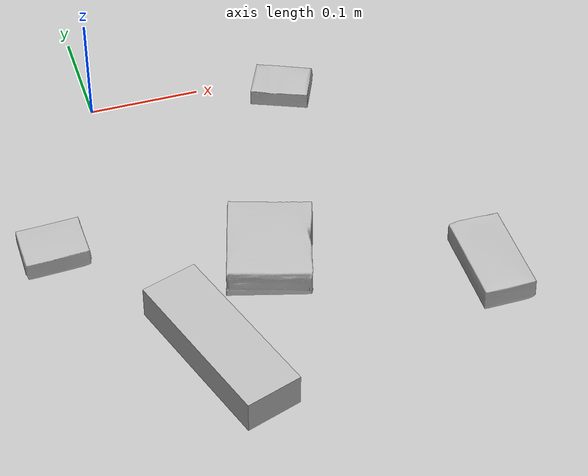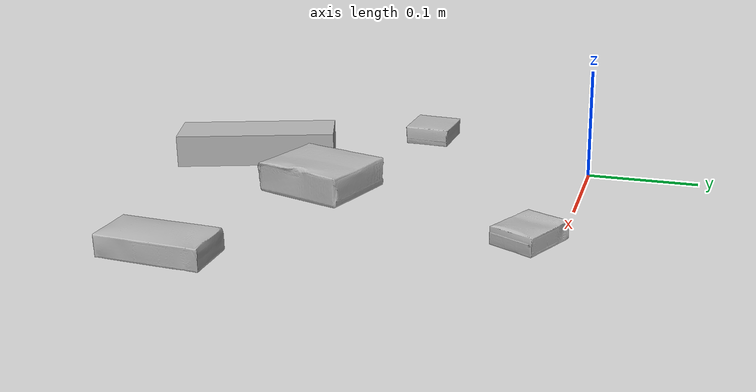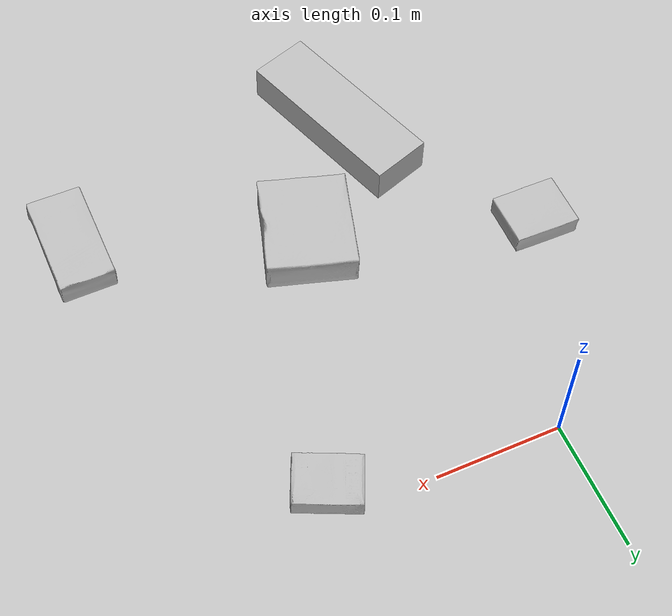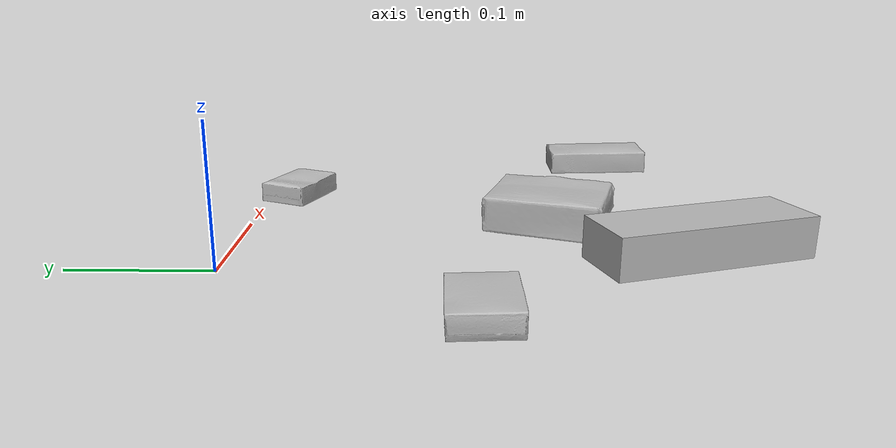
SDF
<sdf version="1.4">
  <world name="default">
    <light name="light1" type="point">
      <pose>0 0 1 0 0 0</pose>
      <diffuse>3 3 3 1</diffuse>
      <specular>3 3 3 1</specular>
    </light>
    <light name="light2" type="point">
      <pose>0 0.5 2 0 0 0</pose>
      <diffuse>1 1 1 1</diffuse>
      <specular>1 1 1 1</specular>
    </light>
    <light name="light3" type="point">
      <pose>0 0.5 2 0 0 0</pose>
      <diffuse>3 3 3 1</diffuse>
      <specular>3 3 3 1</specular>
    </light>
    <scene>
      <ambient>0.7 0.7 0.7</ambient>
    </scene>
    <model name="box1">
      <link name="link_box1">
        <collision name="default">
          <geometry>
            <mesh>
              <uri>model://sugar_box/collision_meshes/collision.obj</uri>
              <scale>0.5 0.5 0.5</scale>
            </mesh>
          </geometry>
          <surface>
            <friction>
              <ode>
                <mu>0.5</mu>
                <mu2>0.5</mu2>
              </ode>
            </friction>
          <contact>
        <ode>
            <max_vel>0</max_vel>
            <min_depth>0.0001</min_depth>
            <kp>1e8</kp>
        </ode>
    </contact></surface>
        </collision>
        <visual name="default">
          <geometry>
            <mesh>
              <uri>model://sugar_box/visual_meshes/visual.dae</uri>
              <scale>0.5 0.5 0.5</scale>
            </mesh>
          </geometry>
        </visual>
        <inertial>
          <mass>0.050072960555553436</mass>
          <pose>0.0005171863595023751 1.924554817378521e-05 -0.00018182402709499002 -0.0004046260967901466 0.0010506635218491861 0.0026153785561980193</pose>
          <inertia>
            <ixx>1.0430162e-05</ixx>
            <iyy>3.371243e-05</iyy>
            <izz>4.0357794e-05</izz>
            <ixy>0</ixy>
            <ixz>0</ixz>
            <iyz>0</iyz>
          </inertia>
        </inertial>
      </link>
      <pose>0.27677249908447266 -0.29320579767227173 0.011399304494261742 0.0007750737526743799 -0.023432547976772647 -1.5765743420944058</pose>
    </model>
    <model name="box2">
      <link name="link_box2">
        <collision name="default">
          <geometry>
            <mesh>
              <uri>model://pudding_box/collision_meshes/collision.obj</uri>
              <scale>0.5 0.5 0.5</scale>
            </mesh>
          </geometry>
          <surface>
            <friction>
              <ode>
                <mu>0.5</mu>
                <mu2>0.5</mu2>
              </ode>
            </friction>
          <contact>
        <ode>
            <max_vel>0</max_vel>
            <min_depth>0.0001</min_depth>
            <kp>1e8</kp>
        </ode>
    </contact></surface>
        </collision>
        <visual name="default">
          <geometry>
            <mesh>
              <uri>model://pudding_box/visual_meshes/visual.dae</uri>
              <scale>0.5 0.5 0.5</scale>
            </mesh>
          </geometry>
        </visual>
        <inertial>
          <mass>0.026034390553832054</mass>
          <pose>0.00024474109522998333 0.00040339428232982755 -0.0002594413817860186 0.005213101355963405 -0.006603798228586091 0.020079817710543634</pose>
          <inertia>
            <ixx>7.3576343e-06</ixx>
            <iyy>4.9502682e-06</iyy>
            <izz>1.086547e-05</izz>
            <ixy>0</ixy>
            <ixz>0</ixz>
            <iyz>0</iyz>
          </inertia>
        </inertial>
      </link>
      <pose>-0.0720529854297638 -0.17140395939350128 0.009862903505563736 0.022349641629004675 -0.01139091010414124 -1.5620429636834934</pose>
    </model>
    <model name="box3">
      <link name="link_box3">
        <collision name="default">
          <geometry>
            <mesh>
              <uri>model://jenga/collision_meshes/collision.obj</uri>
              <scale>1.0 1.0 1.0</scale>
            </mesh>
          </geometry>
          <surface>
            <friction>
              <ode>
                <mu>0.5</mu>
                <mu2>0.5</mu2>
              </ode>
            </friction>
          <contact>
        <ode>
            <max_vel>0</max_vel>
            <min_depth>0.0001</min_depth>
            <kp>1e8</kp>
        </ode>
    </contact></surface>
        </collision>
        <visual name="default">
          <geometry>
            <mesh>
              <uri>model://jenga/visual_meshes/visual.dae</uri>
              <scale>1.0 1.0 1.0</scale>
            </mesh>
          </geometry>
        </visual>
        <inertial>
          <mass>0.2076648771762848</mass>
          <pose>-2.502856091268768e-07 -0.00010250010382151231 -4.0923405322246253e-05 0.0 -7.34215461761844e-07 0.0</pose>
          <inertia>
            <ixx>5.746591e-05</ixx>
            <iyy>0.00038938745</iyy>
            <izz>0.0004157042</izz>
            <ixy>0</ixy>
            <ixz>0</ixz>
            <iyz>0</iyz>
          </inertia>
        </inertial>
      </link>
      <pose>0.03232130408287048 -0.3222178816795349 0.01499999687075615 7.437397889663427e-09 -2.683716065980653e-09 1.8940297517689186</pose>
    </model>
    <model name="box4">
      <link name="link_box4">
        <collision name="default">
          <geometry>
            <mesh>
              <uri>model://gelatin_box/collision_meshes/collision.obj</uri>
              <scale>1.0 1.0 1.0</scale>
            </mesh>
          </geometry>
          <surface>
            <friction>
              <ode>
                <mu>0.5</mu>
                <mu2>0.5</mu2>
              </ode>
            </friction>
          <contact>
        <ode>
            <max_vel>0</max_vel>
            <min_depth>0.0001</min_depth>
            <kp>1e8</kp>
        </ode>
    </contact></surface>
        </collision>
        <visual name="default">
          <geometry>
            <mesh>
              <uri>model://gelatin_box/visual_meshes/visual.dae</uri>
              <scale>1.0 1.0 1.0</scale>
            </mesh>
          </geometry>
        </visual>
        <inertial>
          <mass>0.09577830880880356</mass>
          <pose>0.000431961816502735 0.00011156871187267825 -0.0003640321083366871 -0.0010503719862657887 -0.004755821487046037 0.01644055388468454</pose>
          <inertia>
            <ixx>6.761167e-05</ixx>
            <iyy>4.8294667e-05</iyy>
            <izz>0.00010292002</izz>
            <ixy>0</ixy>
            <ixz>0</ixz>
            <iyz>0</iyz>
          </inertia>
        </inertial>
      </link>
      <pose>0.10175337642431259 -0.22887594997882843 0.015168311074376106 0.0055974639710471485 -0.0073045494269756255 -0.3097094543800742</pose>
    </model>
    <model name="box5">
      <link name="link_box5">
        <collision name="default">
          <geometry>
            <mesh>
              <uri>model://cracker_box/collision_meshes/collision.obj</uri>
              <scale>0.25 0.25 0.25</scale>
            </mesh>
          </geometry>
          <surface>
            <friction>
              <ode>
                <mu>0.5</mu>
                <mu2>0.5</mu2>
              </ode>
            </friction>
          <contact>
        <ode>
            <max_vel>0</max_vel>
            <min_depth>0.0001</min_depth>
            <kp>1e8</kp>
        </ode>
    </contact></surface>
        </collision>
        <visual name="default">
          <geometry>
            <mesh>
              <uri>model://cracker_box/visual_meshes/visual.dae</uri>
              <scale>0.25 0.25 0.25</scale>
            </mesh>
          </geometry>
        </visual>
        <inertial>
          <mass>0.019404999911785126</mass>
          <pose>0.00023660343140363693 6.358561950037256e-05 -0.00042573839891701937 -0.00031620745436260704 -0.011106489600575076 0.0025467952338677235</pose>
          <inertia>
            <ixx>3.084854e-06</ixx>
            <iyy>5.093699e-06</iyy>
            <izz>7.269177e-06</izz>
            <ixy>0</ixy>
            <ixz>0</ixz>
            <iyz>0</iyz>
          </inertia>
        </inertial>
      </link>
      <pose>0.17552314698696136 -0.02450624667108059 0.009120450355112553 -0.011787805732286499 -0.0073671838092726274 -0.4283863969850404</pose>
    </model>
  <physics type="ode">
      <max_contacts>50</max_contacts>
      <ode>
        <solver>
          <type>quick</type>
          <iters>75</iters>
        </solver>
        <constraints>
          <contact_max_correcting_vel>0</contact_max_correcting_vel>
          <contact_surface_layer>0</contact_surface_layer>
        </constraints>
      </ode>
    </physics></world>
</sdf>
